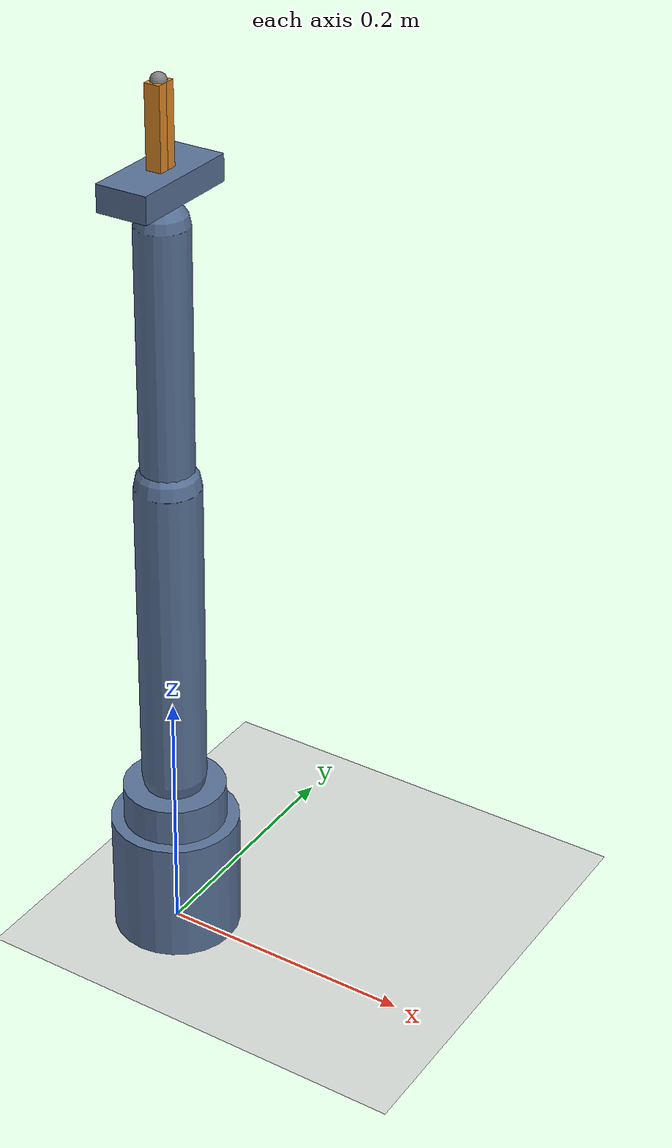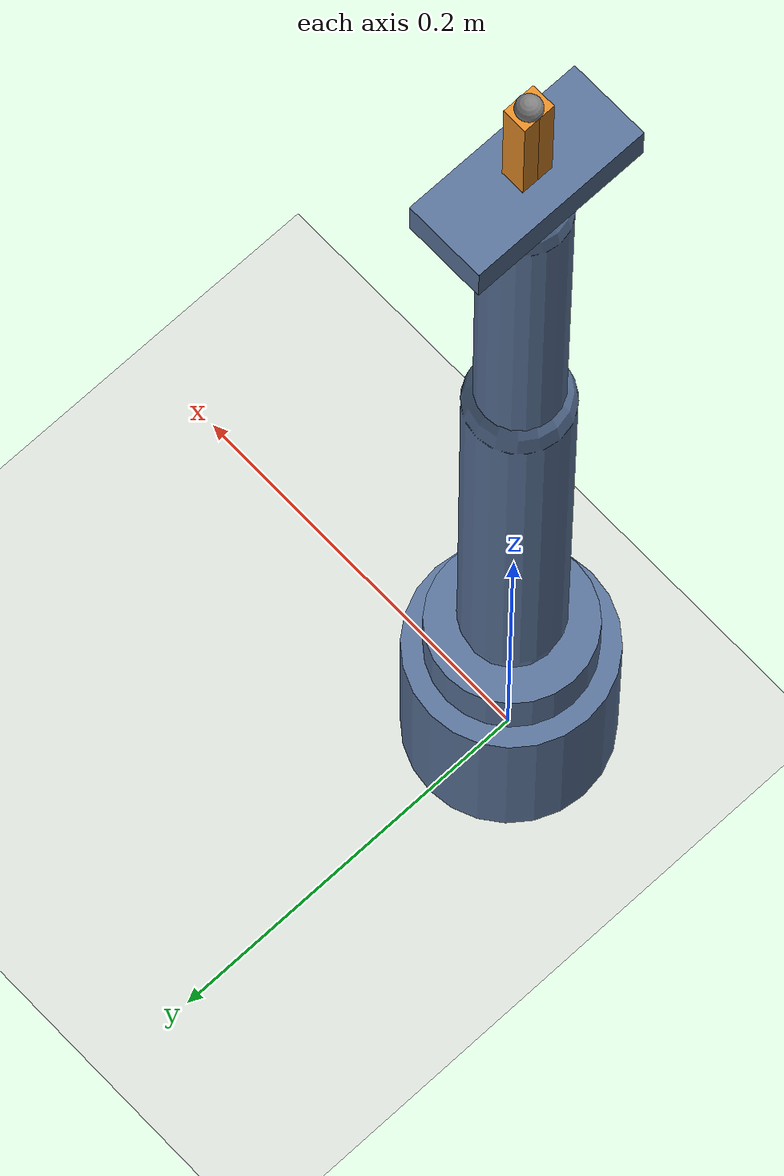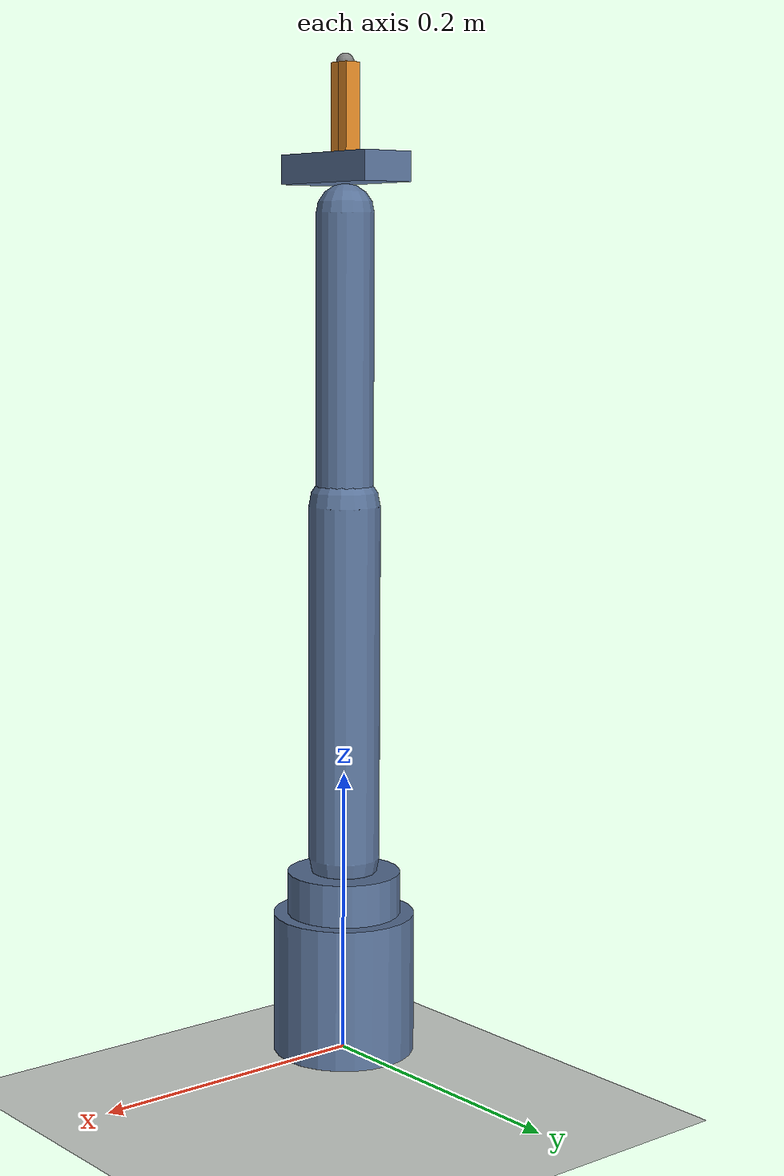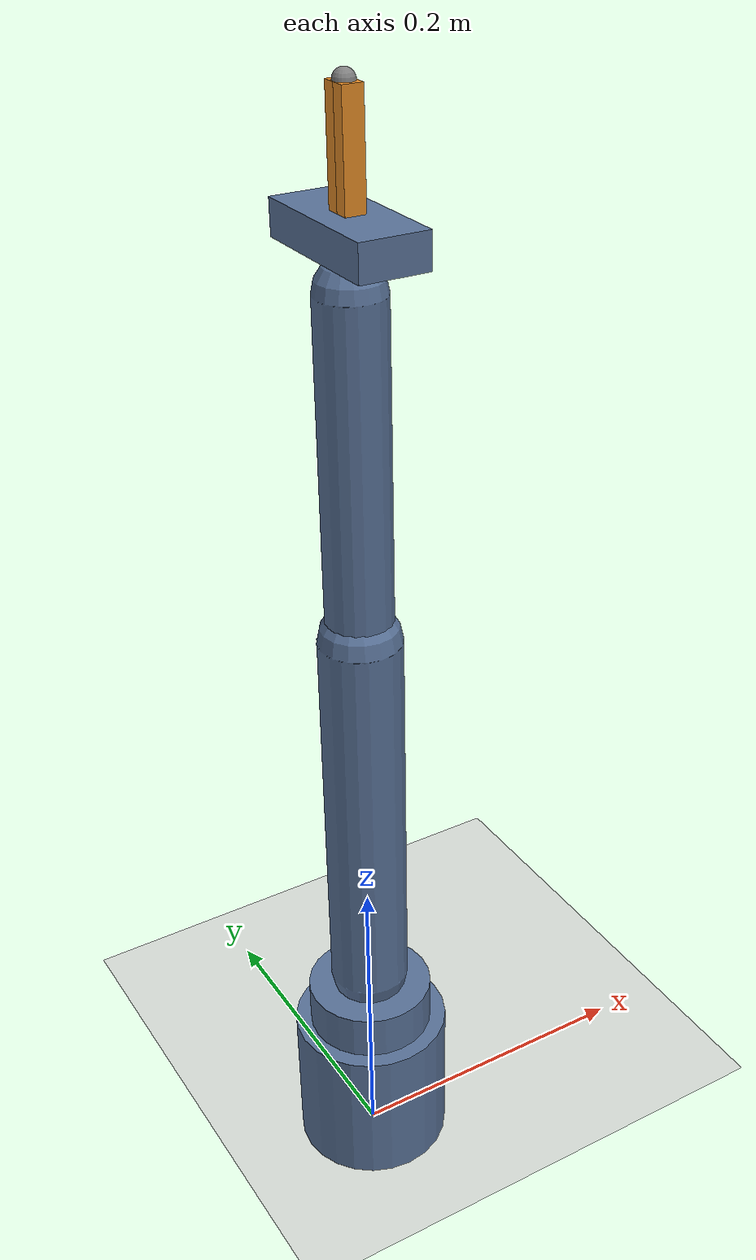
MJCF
<mujoco model="arm3">
  <compiler angle="radian" autolimits="true"/>
  <option timestep="0.002"/>

  <default>
    <joint damping="0.5" armature="0.01"/>                         <!-- N m s/rad; kg m^2 -->
    <geom rgba=".35 .45 .6 1"/>                                    <!-- RGBA, unitless -->
    <default class="finger">
      <joint type="slide" range="0.002 0.035" damping="1"/>
      <geom type="box" size="0.006 0.004 0.03" rgba=".9 .55 .15 1"/>  <!-- half-sizes m; RGBA -->
    </default>
  </default>

  <worldbody>
    <light pos="0 -1 2" dir="0 1 -2"/>                             <!-- m; direction, unitless -->
    <geom name="floor" type="plane" size="1 1 0.05" rgba=".85 .87 .85 1"/>  <!-- m; RGBA -->
    <geom name="base" type="cylinder" fromto="0 0 0 0 0 0.1" size="0.05" mass="2"/>  <!-- m; m; kg -->
    <camera name="workspace" pos="0.75 -0.75 0.65" xyaxes="0.806 0.591 0 -0.234 0.319 0.919"/>  <!-- m; unit vectors -->

    <body name="turret" pos="0 0 0.1">
      <joint name="yaw" axis="0 0 1" range="-2.8 2.8"/>            <!-- unit vector; rad -->
      <geom name="turret" type="cylinder" fromto="0 0 0 0 0 0.03" size="0.04" mass="0.3"/>  <!-- m; m; kg -->

      <body name="upper_arm" pos="0 0 0.04">
        <joint name="shoulder" axis="0 1 0" range="-1.5 1.5"/>     <!-- unit vector; rad -->
        <geom name="upper_arm" type="capsule" fromto="0 0 0 0 0 0.25" size="0.025" mass="0.5"/>  <!-- m; m; kg -->

        <body name="forearm" pos="0 0 0.25">
          <joint name="elbow" axis="0 1 0" range="-2.4 2.4"/>      <!-- unit vector; rad -->
          <geom name="forearm" type="capsule" fromto="0 0 0 0 0 0.2" size="0.02" mass="0.35"/>  <!-- m; m; kg -->

          <body name="hand" pos="0 0 0.22">
            <geom name="palm" type="box" size="0.02 0.045 0.01" pos="0 0 0.01" mass="0.15"/>  <!-- half-sizes m; m; kg -->
            <site name="tcp" pos="0 0 0.08" size="0.006"/>

            <body name="finger_left" pos="0 0 0.02">
              <joint name="finger_left" class="finger" axis="0 1 0"/>  <!-- unit vector -->
              <geom name="finger_left" class="finger" pos="0 0.004 0.03" mass="0.02"/>  <!-- m; kg -->
            </body>
            <body name="finger_right" pos="0 0 0.02">
              <joint name="finger_right" class="finger" axis="0 -1 0"/>  <!-- unit vector -->
              <geom name="finger_right" class="finger" pos="0 -0.004 0.03" mass="0.02"/>  <!-- m; kg -->
            </body>
          </body>
        </body>
      </body>
    </body>
  </worldbody>

  <equality>
    <joint joint1="finger_right" joint2="finger_left"/>            <!-- finger_right = finger_left -->
  </equality>

  <actuator>
    <position name="yaw" joint="yaw" kp="300" kv="20" ctrlrange="-2.8 2.8" forcerange="-15 15"/>  <!-- N m/rad; N m s/rad; rad; N m -->
    <position name="shoulder" joint="shoulder" kp="500" kv="30" ctrlrange="-1.5 1.5" forcerange="-20 20"/>  <!-- N m/rad; N m s/rad; rad; N m -->
    <position name="elbow" joint="elbow" kp="300" kv="15" ctrlrange="-2.4 2.4" forcerange="-15 15"/>  <!-- N m/rad; N m s/rad; rad; N m -->
    <position name="gripper" joint="finger_left" kp="200" kv="5" ctrlrange="0.002 0.035" forcerange="-10 10"/>
  </actuator>

  <keyframe>
    <key name="home" qpos="0 0.6 1.2 0.02 0.02" ctrl="0 0.6 1.2 0.02"/>  <!-- rad rad rad m m; same units for ctrl -->
  </keyframe>
</mujoco>
